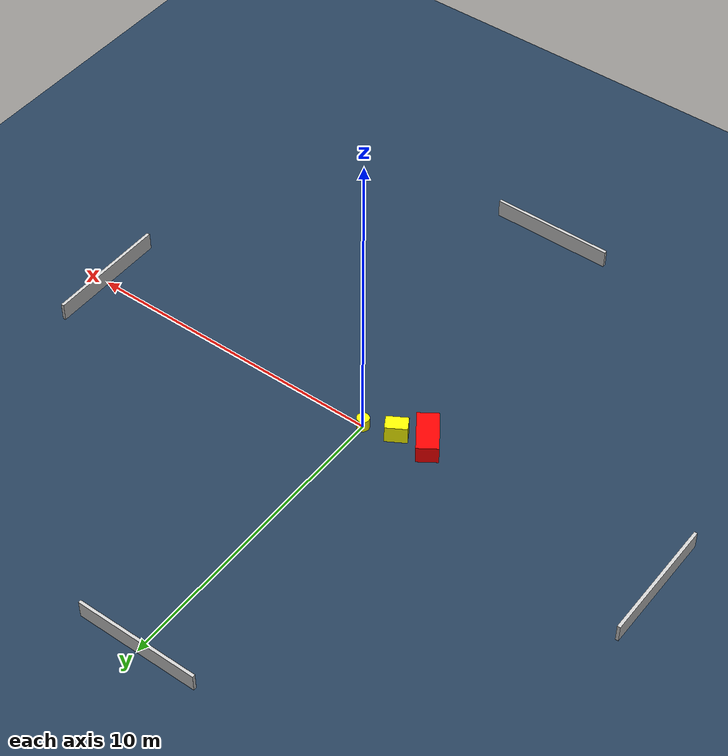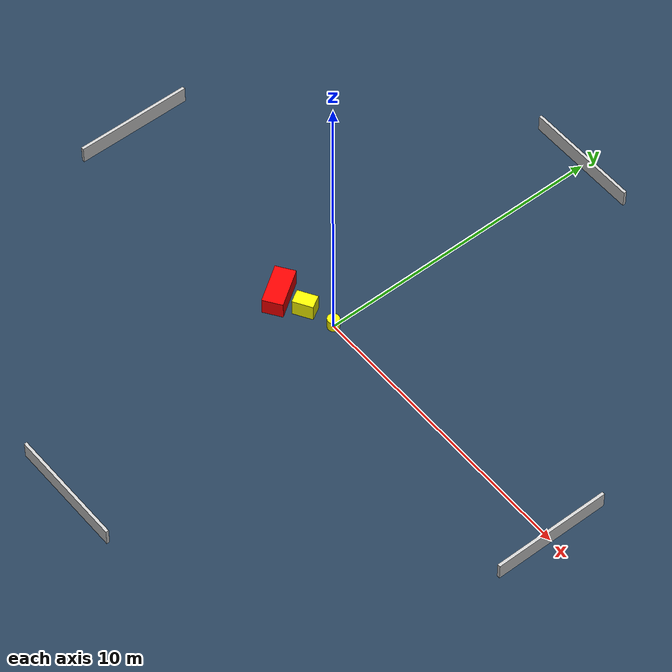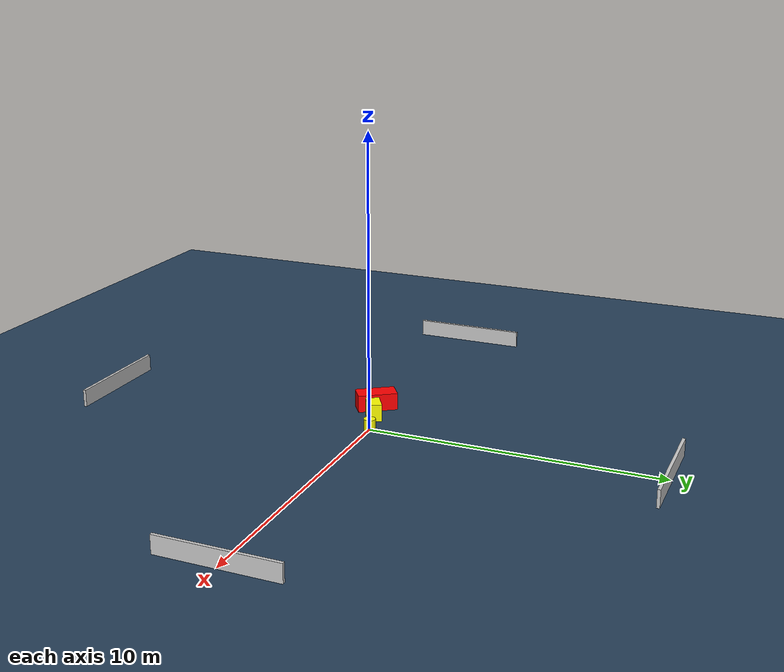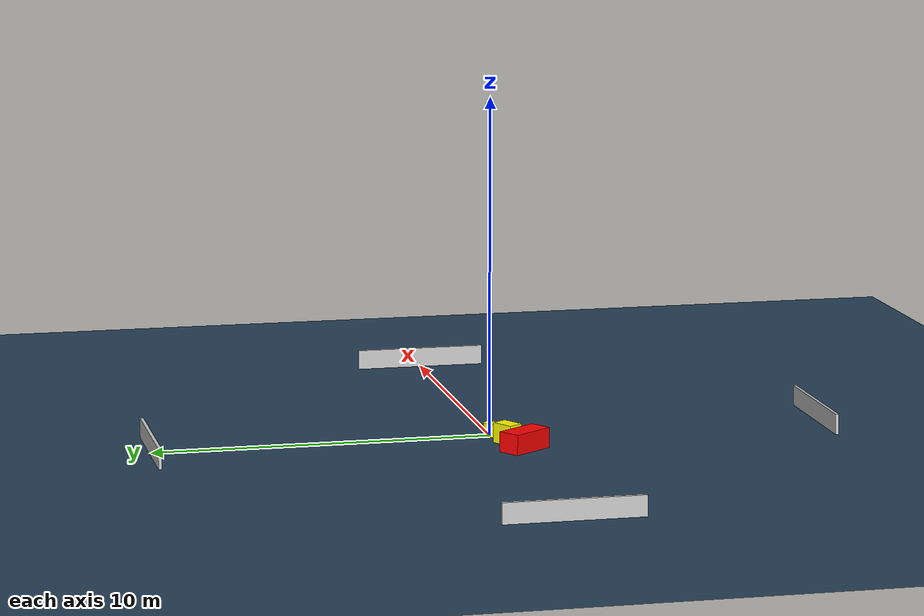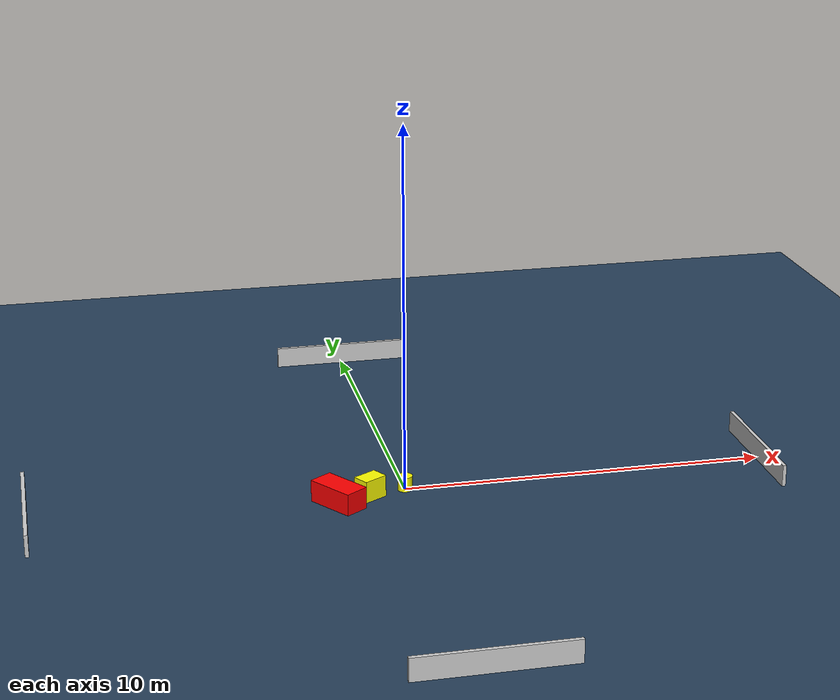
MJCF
<?xml version="1.0" ?>
<mujoco model="generated_environment">
  <option timestep="0.01" integrator="RK4" cone="elliptic"/>
  <default>
    <geom density="1"/>
  </default>
  <asset>
    <texture builtin="gradient" height="3072" name="skybox" rgb1="0.3 0.5 0.7" rgb2="0 0 0" type="skybox" width="512"/>
    <texture builtin="checker" height="300" name="groundplane" rgb1="0.2 0.3 0.4" rgb2="0.1 0.2 0.3" type="2d" width="300"/>
    <material name="groundplane" reflectance="0.2" texrepeat="5 5" texture="groundplane"/>
  </asset>
  <worldbody>
    <light dir="0 0 -1" directional="true" pos="0 0 1.5"/>
    <geom condim="3" friction="0.5 0.005 0.001" material="groundplane" name="floor" pos="0 0 0" size="0 0 0.05" type="plane"/>
    <body name="walls">
      <geom name="wall_1" condim="4" pos="-10.0 0.0 0.3" rgba="0.800000011920929 0.800000011920929 0.800000011920929 1.0" size="0.05 2.0 0.3" type="box"/>
      <geom name="wall_2" condim="4" pos="10.0 0.0 0.3" rgba="0.800000011920929 0.800000011920929 0.800000011920929 1.0" size="0.05 2.0 0.3" type="box"/>
      <geom name="wall_3" condim="4" pos="0.0 -10.0 0.3" rgba="0.800000011920929 0.800000011920929 0.800000011920929 1.0" size="2.0 0.05 0.3" type="box"/>
      <geom name="wall_4" condim="4" pos="0.0 10.0 0.3" rgba="0.800000011920929 0.800000011920929 0.800000011920929 1.0" size="2.0 0.05 0.3" type="box"/>
    </body>
    <body name="robot">
      <joint name="joint_x" type="slide" pos="0 0 0" axis="1 0 0"/>
      <joint name="joint_y" type="slide" pos="0 0 0" axis="0 1 0"/>
      <geom name="robot" type="cylinder" pos="0.0 0.0 0.2" size="0.2 0.2 0.0" mass="5.0" friction="1.0 0.005 0.0001" condim="4" rgba="1.0 1.0 0.0 1.0"/>
    </body>
    <body name="obstacle_1_movable">
      <geom name="obstacle_1_movable" condim="4" pos="-1.0006516640012835 -0.29033068883077806 0.3" euler="0 0 120.969963562994" friction="0.0 0.005 0.001" rgba="1.0 1.0 0.0 1.0" size="0.2354356152291994 0.34687436475148614 0.3" type="box" mass="0.1"/>
      <joint type="free"/>
    </body>
    <body name="obstacle_2_static">
      <geom name="obstacle_2_static" condim="4" pos="-1.9005272624037202 -0.5846280892269093 0.3" euler="0 0 34.54234420405665" friction="0.0 0.005 0.001" rgba="1.0 0.0 0.0 1.0" size="0.3433627925652294 0.6913724929344724 0.3" type="box"/>
    </body>
  </worldbody>
  <actuator>
    <motor name="actuator_x" joint="joint_x" gear="1" ctrlrange="-1 1"/>
    <motor name="actuator_y" joint="joint_y" gear="1" ctrlrange="-1 1"/>
  </actuator>
</mujoco>
